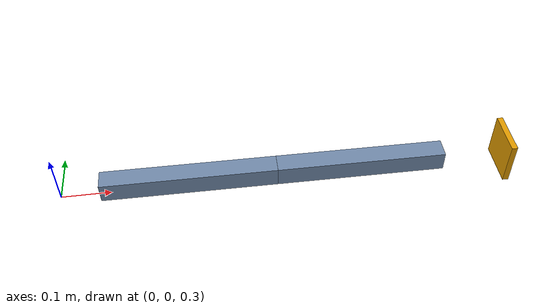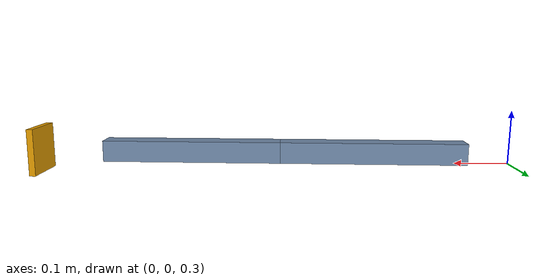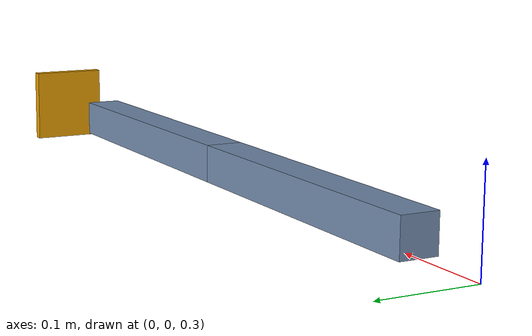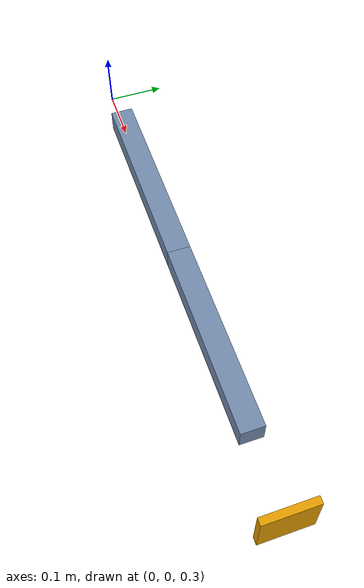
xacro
<?xml version="1.0"?>
<robot name="industrial_robot_6r" xmlns:xacro="http://www.ros.org/wiki/xacro">
  <xacro:arg name="demo_mode" default="false"/>
  <xacro:arg name="controller_yaml" default=""/>
  <xacro:property name="d1" value="0.320"/>
  <xacro:property name="a1" value="0.080"/>
  <xacro:property name="L2" value="0.350"/>
  <xacro:property name="L3" value="0.340"/>
  <xacro:property name="L4" value="0.130"/>
  <xacro:property name="j1limit" value="2.9670597283903604"/>

  <!-- Demo-only placeholder mass/inertia and artificial surfaces:
       NOT actual CAD mass, FEA collision, velocity or torque limits. -->
  <xacro:macro name="demo_inertial" params="mass">
    <xacro:if value="$(arg demo_mode)">
      <inertial>
        <origin xyz="0 0 0" rpy="0 0 0"/>
        <mass value="${mass}"/>
        <inertia ixx="0.02" ixy="0" ixz="0" iyy="0.02" iyz="0" izz="0.02"/>
      </inertial>
    </xacro:if>
  </xacro:macro>
  <xacro:macro name="demo_visual" params="length">
    <visual>
      <origin xyz="${length/2} 0 0" rpy="0 0 0"/>
      <geometry><box size="${length} 0.04 0.04"/></geometry>
      <material name="robot_gray"><color rgba="0.45 0.55 0.68 1"/></material>
    </visual>
    <xacro:if value="$(arg demo_mode)">
      <collision>
        <origin xyz="${length/2} 0 0" rpy="0 0 0"/>
        <geometry><box size="${length} 0.04 0.04"/></geometry>
      </collision>
    </xacro:if>
  </xacro:macro>

  <link name="world"/>
  <link name="base_link">
    <!-- Demo physics needs a real base frame in SDF. No actual CAD inertias inferred. -->
    <xacro:demo_inertial mass="1.0"/>
  </link>
  <joint name="world_to_base" type="fixed">
    <parent link="world"/><child link="base_link"/>
    <origin xyz="0 0 0" rpy="0 0 0"/>
  </joint>
  <!-- Prevent fixed-joint reduction from deleting the base_link SDF frame.
       Preserve only in Gazebo demo mode; math/zero reference is unchanged. -->
  <xacro:if value="$(arg demo_mode)">
    <gazebo reference="world_to_base">
      <preserveFixedJoint>true</preserveFixedJoint>
    </gazebo>
  </xacro:if>

  <link name="link1"><xacro:demo_inertial mass="1.0"/></link>
  <joint name="joint1" type="revolute">
    <parent link="base_link"/><child link="link1"/>
    <origin xyz="0 0 0" rpy="0 0 0"/><axis xyz="0 0 1"/>
    <!-- Only J1 ±170° is confirmed; effort/velocity are demo placeholders. -->
    <limit lower="-${j1limit}" upper="${j1limit}" effort="50" velocity="1.0"/>
  </joint>
  <link name="link2">
    <xacro:demo_inertial mass="1.0"/>
    <xacro:demo_visual length="${L2}"/>
  </link>
  <joint name="joint2" type="continuous">
    <parent link="link1"/><child link="link2"/>
    <origin xyz="${a1} 0 ${d1}" rpy="0 0 0"/><axis xyz="0 1 0"/>
    <!-- No real J2 mechanical limits are known. -->
    <limit effort="50" velocity="1.0"/>
  </joint>
  <link name="link3">
    <xacro:demo_inertial mass="1.0"/>
    <xacro:demo_visual length="${L3}"/>
  </link>
  <joint name="joint3" type="continuous">
    <parent link="link2"/><child link="link3"/>
    <origin xyz="${L2} 0 0" rpy="0 0 0"/><axis xyz="0 1 0"/>
    <limit effort="50" velocity="1.0"/>
  </joint>
  <link name="link4"><xacro:demo_inertial mass="1.0"/></link>
  <joint name="joint4" type="continuous">
    <parent link="link3"/><child link="link4"/>
    <origin xyz="${L3} 0 0" rpy="0 0 0"/><axis xyz="1 0 0"/>
    <limit effort="50" velocity="1.0"/>
  </joint>
  <link name="link5"><xacro:demo_inertial mass="1.0"/></link>
  <joint name="joint5" type="continuous">
    <parent link="link4"/><child link="link5"/>
    <origin xyz="0 0 0" rpy="0 0 0"/><axis xyz="0 1 0"/>
    <limit effort="50" velocity="1.0"/>
  </joint>
  <link name="link6"><xacro:demo_inertial mass="1.0"/></link>
  <joint name="joint6" type="continuous">
    <parent link="link5"/><child link="link6"/>
    <origin xyz="0 0 0" rpy="0 0 0"/><axis xyz="1 0 0"/>
    <limit effort="50" velocity="1.0"/>
  </joint>
  <link name="tool_flange">
    <xacro:demo_inertial mass="0.2"/>
    <visual><geometry><box size="0.012 0.09 0.09"/></geometry></visual>
  </link>
  <joint name="tool_fixed" type="fixed">
    <parent link="link6"/><child link="tool_flange"/>
    <origin xyz="${L4} 0 0" rpy="0 0 0"/>
  </joint>

  <xacro:if value="$(arg demo_mode)">
    <ros2_control name="GazeboSimSystem" type="system">
      <hardware><plugin>gz_ros2_control/GazeboSimSystem</plugin></hardware>
      <xacro:macro name="demo_joint_interface" params="name">
        <joint name="${name}">
          <command_interface name="position"/>
          <state_interface name="position"><param name="initial_value">0.0</param></state_interface>
          <state_interface name="velocity"/>
        </joint>
      </xacro:macro>
      <xacro:demo_joint_interface name="joint1"/>
      <xacro:demo_joint_interface name="joint2"/>
      <xacro:demo_joint_interface name="joint3"/>
      <xacro:demo_joint_interface name="joint4"/>
      <xacro:demo_joint_interface name="joint5"/>
      <xacro:demo_joint_interface name="joint6"/>
    </ros2_control>
    <gazebo>
      <plugin filename="libgz_ros2_control-system.so" name="gz_ros2_control::GazeboSimROS2ControlPlugin">
        <robot_param>robot_description</robot_param>
        <robot_param_node>robot_state_publisher</robot_param_node>
        <parameters>$(arg controller_yaml)</parameters>
      </plugin>
    </gazebo>
  </xacro:if>
</robot>
